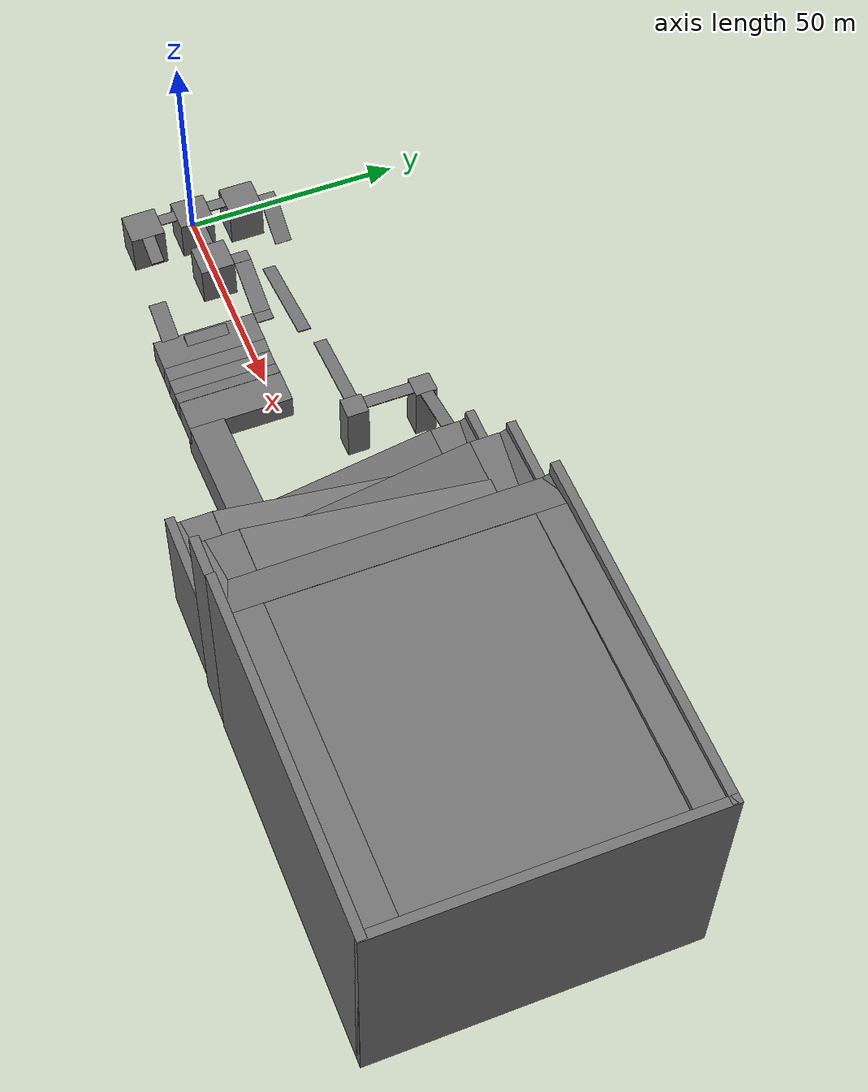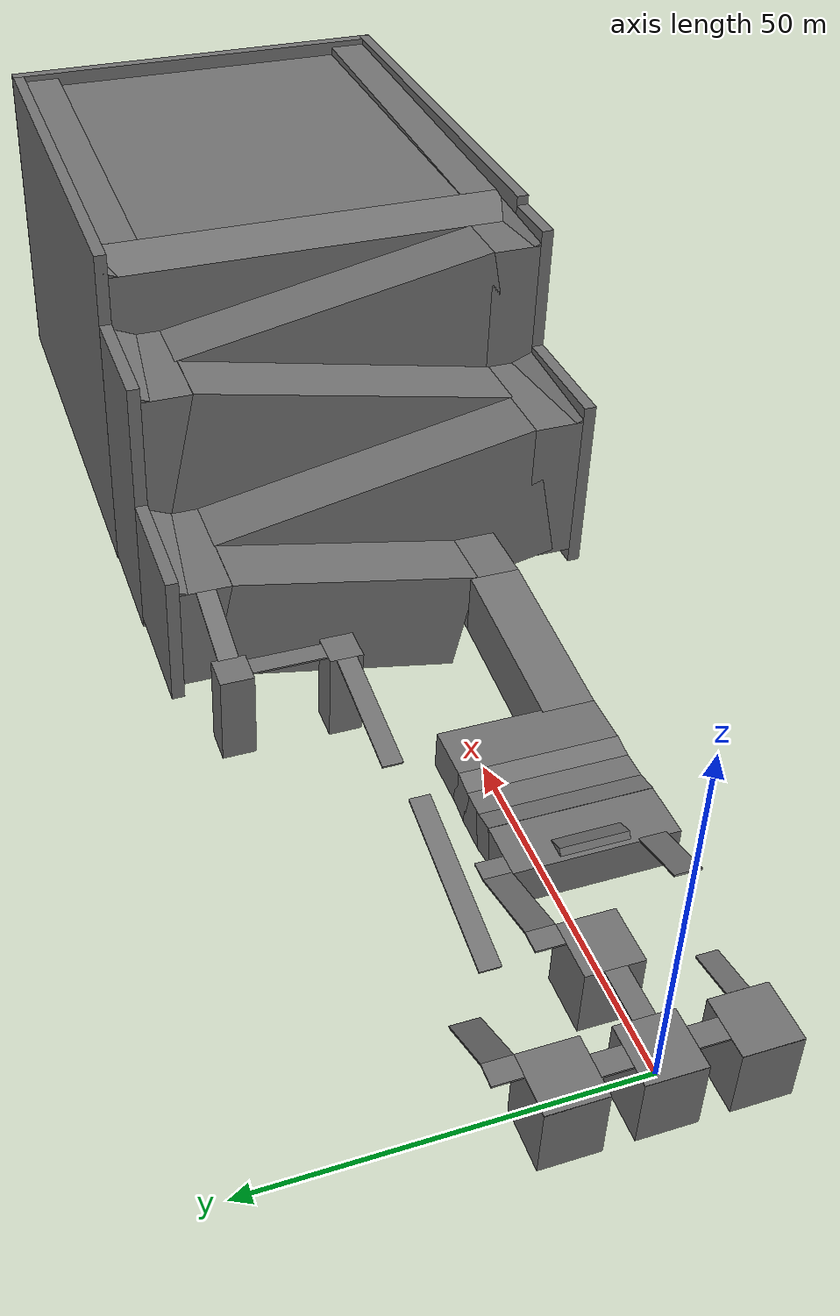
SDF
<sdf version="1.10">
 <world name="waterworld">
  <model name="central_tower">
   <static>true</static>
   <link name="link">
    <collision name="col"><geometry><box><size>8 8 10</size></box></geometry></collision>
    <visual name="vis">
     <geometry><box><size>8 8 10</size></box></geometry>
     <material>
      <ambient>0.35 0.35 0.35 1</ambient>
      <diffuse>0.45 0.45 0.45 1</diffuse>
      <pbr>
       <metal>
        <albedo_map>model://textures/stone_textures/stone_wall_seamless_1x1.jpg</albedo_map>
        <roughness>0.9</roughness>
        <metalness>0.0</metalness>
       </metal>
      </pbr>
     </material>
    </visual>
   </link>
  </model>
  <model name="central_arena_floor_model">
   <static>true</static>
   <pose>0 0 5 0 0 0</pose>
   <link name="central_arena_floor_link">
    <collision name="col">
     <geometry><box><size>8 8 0.1</size></box></geometry>
     <surface>
      <friction><ode><mu>0.9</mu><mu2>0.9</mu2><fdir1>1 0 0</fdir1></ode></friction>
      <bounce><restitution_coefficient>0.03</restitution_coefficient><threshold>1e3</threshold></bounce>
      <contact><ode><kp>1e6</kp><kd>1e3</kd><max_vel>1.0</max_vel><min_depth>0.001</min_depth></ode></contact>
     </surface>
    </collision>
    <visual name="vis">
     <geometry><box><size>8 8 0.1</size></box></geometry>
     <material>
      <ambient>0.35 0.35 0.35 1</ambient>
      <diffuse>0.45 0.45 0.45 1</diffuse>
      <pbr>
       <metal>
        <albedo_map>model://textures/grass_textures/green_grass_seamless.jpg</albedo_map>
        <roughness>0.9</roughness>
        <metalness>0.0</metalness>
       </metal>
      </pbr>
     </material>
    </visual>
   </link>
  </model>
  <model name="west_tower">
   <static>true</static>
   <link name="link">
    <pose>0 12 0 0 0 0</pose>
    <collision name="col"><geometry><box><size>8 8 10</size></box></geometry></collision>
    <visual name="vis">
     <geometry><box><size>8 8 10</size></box></geometry>
     <material>
      <ambient>0.35 0.35 0.35 1</ambient>
      <diffuse>0.45 0.45 0.45 1</diffuse>
      <pbr>
       <metal>
        <albedo_map>model://textures/stone_textures/stone_wall_seamless_1x1.jpg</albedo_map>
        <roughness>0.9</roughness>
        <metalness>0.0</metalness>
       </metal>
      </pbr>
     </material>
    </visual>
   </link>
  </model>
  <model name="west_arena_floor_model">
   <static>true</static>
   <pose>0 12 5 0 0 0</pose>
   <link name="west_arena_floor_link">
    <collision name="col">
     <geometry><box><size>8 8 0.1</size></box></geometry>
     <surface>
      <friction><ode><mu>0.9</mu><mu2>0.9</mu2><fdir1>1 0 0</fdir1></ode></friction>
      <bounce><restitution_coefficient>0.03</restitution_coefficient><threshold>1e3</threshold></bounce>
      <contact><ode><kp>1e6</kp><kd>1e3</kd><max_vel>1.0</max_vel><min_depth>0.001</min_depth></ode></contact>
     </surface>
    </collision>
    <visual name="vis">
     <geometry><box><size>8 8 0.1</size></box></geometry>
     <material>
      <ambient>0.35 0.35 0.35 1</ambient>
      <diffuse>0.45 0.45 0.45 1</diffuse>
      <pbr>
       <metal>
        <albedo_map>model://textures/grass_textures/green_grass_seamless.jpg</albedo_map>
        <roughness>0.9</roughness>
        <metalness>0.0</metalness>
       </metal>
      </pbr>
     </material>
    </visual>
   </link>
  </model>
  <model name="east_tower">
   <static>true</static>
   <link name="link">
    <pose>0 -12 0 0 0 0</pose>
    <collision name="col"><geometry><box><size>8 8 10</size></box></geometry></collision>
    <visual name="vis">
     <geometry><box><size>8 8 10</size></box></geometry>
     <material>
      <ambient>0.35 0.35 0.35 1</ambient>
      <diffuse>0.45 0.45 0.45 1</diffuse>
      <pbr>
       <metal>
        <albedo_map>model://textures/stone_textures/stone_wall_seamless_1x1.jpg</albedo_map>
        <roughness>0.9</roughness>
        <metalness>0.0</metalness>
       </metal>
      </pbr>
     </material>
    </visual>
   </link>
  </model>
  <model name="east_arena_floor_model">
   <static>true</static>
   <pose>0 -12 5 0 0 0</pose>
   <link name="east_arena_floor_link">
    <collision name="col">
     <geometry><box><size>8 8 0.1</size></box></geometry>
     <surface>
      <friction><ode><mu>0.9</mu><mu2>0.9</mu2><fdir1>1 0 0</fdir1></ode></friction>
      <bounce><restitution_coefficient>0.03</restitution_coefficient><threshold>1e3</threshold></bounce>
      <contact><ode><kp>1e6</kp><kd>1e3</kd><max_vel>1.0</max_vel><min_depth>0.001</min_depth></ode></contact>
     </surface>
    </collision>
    <visual name="vis">
     <geometry><box><size>8 8 0.1</size></box></geometry>
     <material>
      <ambient>0.35 0.35 0.35 1</ambient>
      <diffuse>0.45 0.45 0.45 1</diffuse>
      <pbr>
       <metal>
        <albedo_map>model://textures/grass_textures/green_grass_seamless.jpg</albedo_map>
        <roughness>0.9</roughness>
        <metalness>0.0</metalness>
       </metal>
      </pbr>
     </material>
    </visual>
   </link>
  </model>
  <model name="north_tower">
   <static>true</static>
   <link name="link">
    <pose>15 0 0 0 0 0</pose>
    <collision name="col"><geometry><box><size>8 8 10</size></box></geometry></collision>
    <visual name="vis">
     <geometry><box><size>8 8 10</size></box></geometry>
     <material>
      <ambient>0.35 0.35 0.35 1</ambient>
      <diffuse>0.45 0.45 0.45 1</diffuse>
      <pbr>
       <metal>
        <albedo_map>model://textures/stone_textures/stone_wall_seamless_1x1.jpg</albedo_map>
        <roughness>0.9</roughness>
        <metalness>0.0</metalness>
       </metal>
      </pbr>
     </material>
    </visual>
   </link>
  </model>
  <model name="tidal_island_segment_1">
   <static>true</static>
   <link name="link">
    <pose>35 -8 -2.2 0 0 0</pose>
    <collision name="col"><geometry><box><size>8 24 6</size></box></geometry></collision>
    <visual name="vis">
     <geometry><box><size>8 24 6</size></box></geometry>
     <material>
      <ambient>0.35 0.35 0.35 1</ambient>
      <diffuse>0.45 0.45 0.45 1</diffuse>
      <pbr>
       <metal>
        <albedo_map>model://textures/stone_textures/stone_wall_seamless_1x1.jpg</albedo_map>
        <roughness>0.9</roughness>
        <metalness>0.0</metalness>
       </metal>
      </pbr>
     </material>
    </visual>
   </link>
  </model>
  <model name="tidal_island_segment_1_ramp">
   <static>true</static>
   <link name="link">
    <pose>33 -8 -0.1 0 0.4 0</pose>
    <collision name="col"><geometry><box><size>3 10 3</size></box></geometry></collision>
    <visual name="vis">
     <geometry><box><size>3 10 3</size></box></geometry>
     <material>
      <ambient>0.35 0.35 0.35 1</ambient>
      <diffuse>0.45 0.45 0.45 1</diffuse>
      <pbr>
       <metal>
        <albedo_map>model://textures/stone_textures/stone_wall_seamless_1x1.jpg</albedo_map>
        <roughness>0.9</roughness>
        <metalness>0.0</metalness>
       </metal>
      </pbr>
     </material>
    </visual>
   </link>
  </model>
  <model name="tidal_island_segment_2">
   <static>true</static>
   <link name="link">
    <pose>40.3641 -8 -2.4876 0 0.2 0</pose>
    <collision name="col"><geometry><box><size>4 24 6</size></box></geometry></collision>
    <visual name="vis">
     <geometry><box><size>4 24 6</size></box></geometry>
     <material>
      <ambient>0.35 0.35 0.35 1</ambient>
      <diffuse>0.45 0.45 0.45 1</diffuse>
      <pbr>
       <metal>
        <albedo_map>model://textures/stone_textures/stone_wall_seamless_4x1.jpg</albedo_map>
        <roughness>0.9</roughness>
        <metalness>0.0</metalness>
       </metal>
      </pbr>
     </material>
    </visual>
   </link>
  </model>
  <model name="tidal_island_segment_3">
   <static>true</static>
   <link name="link">
    <pose>44.2 -8 -2.8 0 0 0</pose>
    <collision name="col"><geometry><box><size>5 24 6</size></box></geometry></collision>
    <visual name="vis">
     <geometry><box><size>5 24 6</size></box></geometry>
     <material>
      <ambient>0.35 0.35 0.35 1</ambient>
      <diffuse>0.45 0.45 0.45 1</diffuse>
      <pbr>
       <metal>
        <albedo_map>model://textures/stone_textures/stone_wall_seamless_4x1.jpg</albedo_map>
        <roughness>0.9</roughness>
        <metalness>0.0</metalness>
       </metal>
      </pbr>
     </material>
    </visual>
   </link>
  </model>
  <model name="tidal_island_segment_4">
   <static>true</static>
   <link name="link">
    <pose>48 -8 -2.4876 0 -0.2 0</pose>
    <collision name="col"><geometry><box><size>4 24 6</size></box></geometry></collision>
    <visual name="vis">
     <geometry><box><size>4 24 6</size></box></geometry>
     <material>
      <ambient>0.35 0.35 0.35 1</ambient>
      <diffuse>0.45 0.45 0.45 1</diffuse>
      <pbr>
       <metal>
        <albedo_map>model://textures/stone_textures/stone_wall_seamless_4x1.jpg</albedo_map>
        <roughness>0.9</roughness>
        <metalness>0.0</metalness>
       </metal>
      </pbr>
     </material>
    </visual>
   </link>
  </model>
  <model name="tidal_island_segment_5">
   <static>true</static>
   <link name="link">
    <pose>53.3641 -8 -2.2 0 0 0</pose>
    <collision name="col"><geometry><box><size>8 24 6</size></box></geometry></collision>
    <visual name="vis">
     <geometry><box><size>8 24 6</size></box></geometry>
     <material>
      <ambient>0.35 0.35 0.35 1</ambient>
      <diffuse>0.45 0.45 0.45 1</diffuse>
      <pbr>
       <metal>
        <albedo_map>model://textures/stone_textures/stone_wall_seamless_1x1.jpg</albedo_map>
        <roughness>0.9</roughness>
        <metalness>0.0</metalness>
       </metal>
      </pbr>
     </material>
    </visual>
   </link>
  </model>
  <model name="north_bridge">
   <static>true</static>
   <link name="link">
    <pose>7.5 0 4.925 0 0 0</pose>
    <collision name="col"><geometry><box><size>7 3 0.25</size></box></geometry></collision>
    <visual name="vis">
     <geometry><box><size>7 3 0.25</size></box></geometry>
     <material>
      <ambient>0.35 0.35 0.35 1</ambient>
      <diffuse>0.45 0.45 0.45 1</diffuse>
      <pbr>
       <metal>
        <albedo_map>model://textures/wood_textures/wood_texture_seamless_1x2.jpg</albedo_map>
        <roughness>0.9</roughness>
        <metalness>0.0</metalness>
       </metal>
      </pbr>
     </material>
    </visual>
   </link>
  </model>
  <model name="east_bridge">
   <static>true</static>
   <link name="link">
    <pose>0 -6 4.925 0 0 0</pose>
    <collision name="col"><geometry><box><size>3 4 0.25</size></box></geometry></collision>
    <visual name="vis">
     <geometry><box><size>3 4 0.25</size></box></geometry>
     <material>
      <ambient>0.35 0.35 0.35 1</ambient>
      <diffuse>0.45 0.45 0.45 1</diffuse>
      <pbr>
       <metal>
        <albedo_map>model://textures/wood_textures/wood_texture_seamless_1x1.jpg</albedo_map>
        <roughness>0.9</roughness>
        <metalness>0.0</metalness>
       </metal>
      </pbr>
     </material>
    </visual>
   </link>
  </model>
  <model name="west_bridge">
   <static>true</static>
   <link name="link">
    <pose>0 6 4.925 0 0 0</pose>
    <collision name="col"><geometry><box><size>3 4 0.25</size></box></geometry></collision>
    <visual name="vis">
     <geometry><box><size>3 4 0.25</size></box></geometry>
     <material>
      <ambient>0.35 0.35 0.35 1</ambient>
      <diffuse>0.45 0.45 0.45 1</diffuse>
      <pbr>
       <metal>
        <albedo_map>model://textures/wood_textures/wood_texture_seamless_1x1.jpg</albedo_map>
        <roughness>0.9</roughness>
        <metalness>0.0</metalness>
       </metal>
      </pbr>
     </material>
    </visual>
   </link>
  </model>
  <model name="east_north_bridge">
   <static>true</static>
   <link name="link">
    <pose>7.39 -12 4.165 0 0.22 0</pose>
    <collision name="col"><geometry><box><size>7 3 0.25</size></box></geometry></collision>
    <visual name="vis">
     <geometry><box><size>7 3 0.25</size></box></geometry>
     <material>
      <ambient>0.35 0.35 0.35 1</ambient>
      <diffuse>0.45 0.45 0.45 1</diffuse>
      <pbr>
       <metal>
        <albedo_map>model://textures/wood_textures/wood_texture_seamless_1x2.jpg</albedo_map>
        <roughness>0.9</roughness>
        <metalness>0.0</metalness>
       </metal>
      </pbr>
     </material>
    </visual>
   </link>
  </model>
  <model name="west_north_bridge_platform">
   <static>true</static>
   <link name="link">
    <pose>2.5 18 4.925 0 0 0</pose>
    <collision name="col"><geometry><box><size>3 4 0.25</size></box></geometry></collision>
    <visual name="vis">
     <geometry><box><size>3 4 0.25</size></box></geometry>
     <material>
      <ambient>0.35 0.35 0.35 1</ambient>
      <diffuse>0.45 0.45 0.45 1</diffuse>
      <pbr>
       <metal>
        <albedo_map>model://textures/wood_textures/wood_texture_seamless_1x1.jpg</albedo_map>
        <roughness>0.9</roughness>
        <metalness>0.0</metalness>
       </metal>
      </pbr>
     </material>
    </visual>
   </link>
  </model>
  <model name="west_north_bridge">
   <static>true</static>
   <link name="link">
    <pose>8.328 18 2.543 0 0.5 0</pose>
    <collision name="col"><geometry><box><size>10 4 0.25</size></box></geometry></collision>
    <visual name="vis">
     <geometry><box><size>10 4 0.25</size></box></geometry>
     <material>
      <ambient>0.35 0.35 0.35 1</ambient>
      <diffuse>0.45 0.45 0.45 1</diffuse>
      <pbr>
       <metal>
        <albedo_map>model://textures/wood_textures/wood_texture_seamless_1x3.jpg</albedo_map>
        <roughness>0.9</roughness>
        <metalness>0.0</metalness>
       </metal>
      </pbr>
     </material>
    </visual>
   </link>
  </model>
  <model name="west_north_north_bridge">
   <static>true</static>
   <link name="link">
    <pose>31 12.2 2.5 0 -0.2 0</pose>
    <collision name="col"><geometry><box><size>25 3 0.25</size></box></geometry></collision>
    <visual name="vis">
     <geometry><box><size>25 3 0.25</size></box></geometry>
     <material>
      <ambient>0.35 0.35 0.35 1</ambient>
      <diffuse>0.45 0.45 0.45 1</diffuse>
      <pbr>
       <metal>
        <albedo_map>model://textures/wood_textures/wood_texture_seamless_1x10.jpg</albedo_map>
        <roughness>0.9</roughness>
        <metalness>0.0</metalness>
       </metal>
      </pbr>
     </material>
    </visual>
   </link>
  </model>
  <model name="north_north_bridge_platform_1">
   <static>true</static>
   <link name="link">
    <pose>17.5 6 4.925 0 0 0</pose>
    <collision name="col"><geometry><box><size>3 4 0.25</size></box></geometry></collision>
    <visual name="vis">
     <geometry><box><size>3 4 0.25</size></box></geometry>
     <material>
      <ambient>0.35 0.35 0.35 1</ambient>
      <diffuse>0.45 0.45 0.45 1</diffuse>
      <pbr>
       <metal>
        <albedo_map>model://textures/wood_textures/wood_texture_seamless_1x3.jpg</albedo_map>
        <roughness>0.9</roughness>
        <metalness>0.0</metalness>
       </metal>
      </pbr>
     </material>
    </visual>
   </link>
  </model>
  <model name="north_north_bridge">
   <static>true</static>
   <link name="link">
    <pose>25.1 6 2.82 0 0.33 0</pose>
    <collision name="col"><geometry><box><size>13 4 0.25</size></box></geometry></collision>
    <visual name="vis">
     <geometry><box><size>13 4 0.25</size></box></geometry>
     <material>
      <ambient>0.35 0.35 0.35 1</ambient>
      <diffuse>0.45 0.45 0.45 1</diffuse>
      <pbr>
       <metal>
        <albedo_map>model://textures/wood_textures/wood_texture_seamless_1x3.jpg</albedo_map>
        <roughness>0.9</roughness>
        <metalness>0.0</metalness>
       </metal>
      </pbr>
     </material>
    </visual>
   </link>
  </model>
  <model name="north_north_bridge_platform_2">
   <static>true</static>
   <link name="link">
    <pose>32.5 6 0.725 0 0 0</pose>
    <collision name="col"><geometry><box><size>3 4 0.25</size></box></geometry></collision>
    <visual name="vis">
     <geometry><box><size>3 4 0.25</size></box></geometry>
     <material>
      <ambient>0.35 0.35 0.35 1</ambient>
      <diffuse>0.45 0.45 0.45 1</diffuse>
      <pbr>
       <metal>
        <albedo_map>model://textures/wood_textures/wood_texture_seamless_1x1.jpg</albedo_map>
        <roughness>0.9</roughness>
        <metalness>0.0</metalness>
       </metal>
      </pbr>
     </material>
    </visual>
   </link>
  </model>
  <model name="east_north_north_bridge">
   <static>true</static>
   <link name="link">
    <pose>27.26 -16 1.986 0 0.3 0</pose>
    <collision name="col"><geometry><box><size>10 4 0.25</size></box></geometry></collision>
    <visual name="vis">
     <geometry><box><size>10 4 0.25</size></box></geometry>
     <material>
      <ambient>0.35 0.35 0.35 1</ambient>
      <diffuse>0.45 0.45 0.45 1</diffuse>
      <pbr>
       <metal>
        <albedo_map>model://textures/wood_textures/wood_texture_seamless_1x5.jpg</albedo_map>
        <roughness>0.9</roughness>
        <metalness>0.0</metalness>
       </metal>
      </pbr>
     </material>
    </visual>
   </link>
  </model>
  <model name="stone_bridge_1">
   <static>true</static>
   <link name="link">
    <pose>70 -15.999 -2.66 0 -0.12 0</pose>
    <collision name="col"><geometry><box><size>30 8 10</size></box></geometry></collision>
    <visual name="vis">
     <geometry><box><size>30 8 10</size></box></geometry>
     <material>
      <ambient>0.35 0.35 0.35 1</ambient>
      <diffuse>0.45 0.45 0.45 1</diffuse>
      <pbr>
       <metal>
        <albedo_map>model://textures/stone_textures/stone_wall_seamless_1x3.jpg</albedo_map>
        <roughness>0.9</roughness>
        <metalness>0.0</metalness>
       </metal>
      </pbr>
     </material>
    </visual>
   </link>
  </model>
  <model name="east_north_north_north_bridge_1">
   <static>true</static>
   <link name="link">
    <pose>57.978 14 7.6 0 -0.133 0</pose>
    <collision name="col"><geometry><box><size>19.25 3 0.25</size></box></geometry></collision>
    <visual name="vis">
     <geometry><box><size>19.25 3 0.25</size></box></geometry>
     <material>
      <ambient>0.35 0.35 0.35 1</ambient>
      <diffuse>0.45 0.45 0.45 1</diffuse>
      <pbr>
       <metal>
        <albedo_map>model://textures/wood_textures/wood_texture_seamless_1x5.jpg</albedo_map>
        <roughness>0.9</roughness>
        <metalness>0.0</metalness>
       </metal>
      </pbr>
     </material>
    </visual>
   </link>
  </model>
  <model name="east_north_north_north_bridge_platform_1">
   <static>true</static>
   <link name="link">
    <pose>70 14 2 0 0 0</pose>
    <collision name="col"><geometry><box><size>5 5 14</size></box></geometry></collision>
    <visual name="vis">
     <geometry><box><size>5 5 14</size></box></geometry>
     <material>
      <ambient>0.35 0.35 0.35 1</ambient>
      <diffuse>0.45 0.45 0.45 1</diffuse>
      <pbr>
       <metal>
        <albedo_map>model://textures/stone_textures/stone_wall_seamless_1x1.jpg</albedo_map>
        <roughness>0.9</roughness>
        <metalness>0.0</metalness>
       </metal>
      </pbr>
     </material>
    </visual>
   </link>
  </model>
  <model name="east_north_north_north_bridge_2">
   <static>true</static>
   <link name="link">
    <pose>70 22 8.875 0 0 0</pose>
    <collision name="col"><geometry><box><size>3 11 0.25</size></box></geometry></collision>
    <visual name="vis">
     <geometry><box><size>3 11 0.25</size></box></geometry>
     <material>
      <ambient>0.35 0.35 0.35 1</ambient>
      <diffuse>0.45 0.45 0.45 1</diffuse>
      <pbr>
       <metal>
        <albedo_map>model://textures/wood_textures/wood_texture_seamless_1x1.jpg</albedo_map>
        <roughness>0.9</roughness>
        <metalness>0.0</metalness>
       </metal>
      </pbr>
     </material>
    </visual>
   </link>
  </model>
  <model name="east_north_north_north_bridge_platform_2">
   <static>true</static>
   <link name="link">
    <pose>70 30 2 0 0 0</pose>
    <collision name="col"><geometry><box><size>5 5 14</size></box></geometry></collision>
    <visual name="vis">
     <geometry><box><size>5 5 14</size></box></geometry>
     <material>
      <ambient>0.35 0.35 0.35 1</ambient>
      <diffuse>0.45 0.45 0.45 1</diffuse>
      <pbr>
       <metal>
        <albedo_map>model://textures/stone_textures/stone_wall_seamless_1x1.jpg</albedo_map>
        <roughness>0.9</roughness>
        <metalness>0.0</metalness>
       </metal>
      </pbr>
     </material>
    </visual>
   </link>
  </model>
  <model name="east_north_north_north_bridge_3">
   <static>true</static>
   <link name="link">
    <pose>78.265 30 10.385 0 -0.25 0</pose>
    <collision name="col"><geometry><box><size>12.5 3 0.25</size></box></geometry></collision>
    <visual name="vis">
     <geometry><box><size>12.5 3 0.25</size></box></geometry>
     <material>
      <ambient>0.35 0.35 0.35 1</ambient>
      <diffuse>0.45 0.45 0.45 1</diffuse>
      <pbr>
       <metal>
        <albedo_map>model://textures/wood_textures/wood_texture_seamless_1x5.jpg</albedo_map>
        <roughness>0.9</roughness>
        <metalness>0.0</metalness>
       </metal>
      </pbr>
     </material>
    </visual>
   </link>
  </model>
  <model name="ramp_tower_left_landing_1">
   <static>true</static>
   <link name="link">
    <pose>94.29 30 3.5 0 0 0</pose>
    <collision name="col"><geometry><box><size>20 8 17</size></box></geometry></collision>
    <visual name="vis">
     <geometry><box><size>20 8 17</size></box></geometry>
     <material>
      <ambient>0.35 0.35 0.35 1</ambient>
      <diffuse>0.45 0.45 0.45 1</diffuse>
      <pbr>
       <metal>
        <albedo_map>model://textures/stone_textures/stone_wall_seamless_1x1.jpg</albedo_map>
        <roughness>0.9</roughness>
        <metalness>0.0</metalness>
       </metal>
      </pbr>
     </material>
    </visual>
   </link>
  </model>
  <model name="ramp_tower_left_landing_1_wall">
   <static>true</static>
   <link name="link">
    <pose>94.29 35 3.5 0 0 0</pose>
    <collision name="col"><geometry><box><size>20 2 22</size></box></geometry></collision>
    <visual name="vis">
     <geometry><box><size>20 2 22</size></box></geometry>
     <material>
      <ambient>0.35 0.35 0.35 1</ambient>
      <diffuse>0.45 0.45 0.45 1</diffuse>
      <pbr>
       <metal>
        <albedo_map>model://textures/stone_textures/stone_wall_seamless_1x1.jpg</albedo_map>
        <roughness>0.9</roughness>
        <metalness>0.0</metalness>
       </metal>
      </pbr>
     </material>
    </visual>
   </link>
  </model>
  <model name="ramp_tower_left_landing_1_ramp">
   <static>true</static>
   <link name="link">
    <pose>94.6 33 11 0.40 -0.05 0</pose>
    <collision name="col"><geometry><box><size>20.4 5 3</size></box></geometry></collision>
    <visual name="vis">
     <geometry><box><size>20.4 5 3</size></box></geometry>
     <material>
      <ambient>0.35 0.35 0.35 1</ambient>
      <diffuse>0.45 0.45 0.45 1</diffuse>
      <pbr>
       <metal>
        <albedo_map>model://textures/stone_textures/stone_wall_seamless_1x1.jpg</albedo_map>
        <roughness>0.9</roughness>
        <metalness>0.0</metalness>
       </metal>
      </pbr>
     </material>
    </visual>
   </link>
  </model>
  <model name="ramp_tower_right_landing_1">
   <static>true</static>
   <link name="link">
    <pose>89.29 -15.999 -0.95 0 0 0</pose>
    <collision name="col"><geometry><box><size>10 8 10</size></box></geometry></collision>
    <visual name="vis">
     <geometry><box><size>10 8 10</size></box></geometry>
     <material>
      <ambient>0.35 0.35 0.35 1</ambient>
      <diffuse>0.45 0.45 0.45 1</diffuse>
      <pbr>
       <metal>
        <albedo_map>model://textures/stone_textures/stone_wall_seamless_1x1.jpg</albedo_map>
        <roughness>0.9</roughness>
        <metalness>0.0</metalness>
       </metal>
      </pbr>
     </material>
    </visual>
   </link>
  </model>
  <model name="ramp_tower_ramp_1">
   <static>true</static>
   <link name="link">
    <pose>89.29 8.087 -0.253 0.2 0 0</pose>
    <collision name="col"><geometry><box><size>10 40 17</size></box></geometry></collision>
    <visual name="vis">
     <geometry><box><size>10 40 17</size></box></geometry>
     <material>
      <ambient>0.35 0.35 0.35 1</ambient>
      <diffuse>0.45 0.45 0.45 1</diffuse>
      <pbr>
       <metal>
        <albedo_map>model://textures/stone_textures/stone_wall_seamless_4x1.jpg</albedo_map>
        <roughness>0.9</roughness>
        <metalness>0.0</metalness>
       </metal>
      </pbr>
     </material>
    </visual>
   </link>
  </model>
  <model name="ramp_tower_ramp_2">
   <static>true</static>
   <link name="link">
    <pose>99.29 0 4.55 -0.2 0 0</pose>
    <collision name="col"><geometry><box><size>10 58.15 25</size></box></geometry></collision>
    <visual name="vis">
     <geometry><box><size>10 58.15 25</size></box></geometry>
     <material>
      <ambient>0.35 0.35 0.35 1</ambient>
      <diffuse>0.45 0.45 0.45 1</diffuse>
      <pbr>
       <metal>
        <albedo_map>model://textures/stone_textures/stone_wall_seamless_4x1.jpg</albedo_map>
        <roughness>0.9</roughness>
        <metalness>0.0</metalness>
       </metal>
      </pbr>
     </material>
    </visual>
   </link>
  </model>
  <model name="ramp_tower_left_landing_2">
   <static>true</static>
   <link name="link">
    <pose>104.29 -30 10 0 0 0</pose>
    <collision name="col"><geometry><box><size>20 8 25</size></box></geometry></collision>
    <visual name="vis">
     <geometry><box><size>20 8 25</size></box></geometry>
     <material>
      <ambient>0.35 0.35 0.35 1</ambient>
      <diffuse>0.45 0.45 0.45 1</diffuse>
      <pbr>
       <metal>
        <albedo_map>model://textures/stone_textures/stone_wall_seamless_1x1.jpg</albedo_map>
        <roughness>0.9</roughness>
        <metalness>0.0</metalness>
       </metal>
      </pbr>
     </material>
    </visual>
   </link>
  </model>
  <model name="ramp_tower_left_landing_2_wall">
   <static>true</static>
   <link name="link">
    <pose>104.29 -35 10 0 0 0</pose>
    <collision name="col"><geometry><box><size>20 2 30</size></box></geometry></collision>
    <visual name="vis">
     <geometry><box><size>20 2 30</size></box></geometry>
     <material>
      <ambient>0.35 0.35 0.35 1</ambient>
      <diffuse>0.45 0.45 0.45 1</diffuse>
      <pbr>
       <metal>
        <albedo_map>model://textures/stone_textures/stone_wall_seamless_1x1.jpg</albedo_map>
        <roughness>0.9</roughness>
        <metalness>0.0</metalness>
       </metal>
      </pbr>
     </material>
    </visual>
   </link>
  </model>
  <model name="ramp_tower_left_landing_2_ramp">
   <static>true</static>
   <link name="link">
    <pose>104.6 -32.5 21.2 -0.4 -0.05 0</pose>
    <collision name="col"><geometry><box><size>20.4 5 3</size></box></geometry></collision>
    <visual name="vis">
     <geometry><box><size>20.4 5 3</size></box></geometry>
     <material>
      <ambient>0.35 0.35 0.35 1</ambient>
      <diffuse>0.45 0.45 0.45 1</diffuse>
      <pbr>
       <metal>
        <albedo_map>model://textures/stone_textures/stone_wall_seamless_1x1.jpg</albedo_map>
        <roughness>0.9</roughness>
        <metalness>0.0</metalness>
       </metal>
      </pbr>
     </material>
    </visual>
   </link>
  </model>
  <model name="ramp_tower_ramp_3">
   <static>true</static>
   <link name="link">
    <pose>109.29 0 15.1 0.2 0 0</pose>
    <collision name="col"><geometry><box><size>10 58.15 25</size></box></geometry></collision>
    <visual name="vis">
     <geometry><box><size>10 58.15 25</size></box></geometry>
     <material>
      <ambient>0.35 0.35 0.35 1</ambient>
      <diffuse>0.45 0.45 0.45 1</diffuse>
      <pbr>
       <metal>
        <albedo_map>model://textures/stone_textures/stone_wall_seamless_4x1.jpg</albedo_map>
        <roughness>0.9</roughness>
        <metalness>0.0</metalness>
       </metal>
      </pbr>
     </material>
    </visual>
   </link>
  </model>
  <model name="ramp_tower_left_landing_3">
   <static>true</static>
   <link name="link">
    <pose>114.29 30 13.05 0 0 0</pose>
    <collision name="col"><geometry><box><size>20 8 40</size></box></geometry></collision>
    <visual name="vis">
     <geometry><box><size>20 8 40</size></box></geometry>
     <material>
      <ambient>0.35 0.35 0.35 1</ambient>
      <diffuse>0.45 0.45 0.45 1</diffuse>
      <pbr>
       <metal>
        <albedo_map>model://textures/stone_textures/stone_wall_seamless_1x1.jpg</albedo_map>
        <roughness>0.9</roughness>
        <metalness>0.0</metalness>
       </metal>
      </pbr>
     </material>
    </visual>
   </link>
  </model>
  <model name="ramp_tower_left_landing_3_wall">
   <static>true</static>
   <link name="link">
    <pose>114.29 35 13.05 0 0 0</pose>
    <collision name="col"><geometry><box><size>20 2 45</size></box></geometry></collision>
    <visual name="vis">
     <geometry><box><size>20 2 45</size></box></geometry>
     <material>
      <ambient>0.35 0.35 0.35 1</ambient>
      <diffuse>0.45 0.45 0.45 1</diffuse>
      <pbr>
       <metal>
        <albedo_map>model://textures/stone_textures/stone_wall_seamless_1x1.jpg</albedo_map>
        <roughness>0.9</roughness>
        <metalness>0.0</metalness>
       </metal>
      </pbr>
     </material>
    </visual>
   </link>
  </model>
  <model name="ramp_tower_left_landing_3_ramp">
   <static>true</static>
   <link name="link">
    <pose>114.6 33 32.1 0.40 -0.05 0</pose>
    <collision name="col"><geometry><box><size>20.4 5 3</size></box></geometry></collision>
    <visual name="vis">
     <geometry><box><size>20.4 5 3</size></box></geometry>
     <material>
      <ambient>0.35 0.35 0.35 1</ambient>
      <diffuse>0.45 0.45 0.45 1</diffuse>
      <pbr>
       <metal>
        <albedo_map>model://textures/stone_textures/stone_wall_seamless_1x1.jpg</albedo_map>
        <roughness>0.9</roughness>
        <metalness>0.0</metalness>
       </metal>
      </pbr>
     </material>
    </visual>
   </link>
  </model>
  <model name="ramp_tower_ramp_4">
   <static>true</static>
   <link name="link">
    <pose>119.29 0 25.65 -0.2 0 0</pose>
    <collision name="col"><geometry><box><size>10 58.15 25</size></box></geometry></collision>
    <visual name="vis">
     <geometry><box><size>10 58.15 25</size></box></geometry>
     <material>
      <ambient>0.35 0.35 0.35 1</ambient>
      <diffuse>0.45 0.45 0.45 1</diffuse>
      <pbr>
       <metal>
        <albedo_map>model://textures/stone_textures/stone_wall_seamless_4x1.jpg</albedo_map>
        <roughness>0.9</roughness>
        <metalness>0.0</metalness>
       </metal>
      </pbr>
     </material>
    </visual>
   </link>
  </model>
  <model name="ramp_tower_top_landing_4">
   <static>true</static>
   <link name="link">
    <pose>124.29 -30 18.6 0 0 0</pose>
    <collision name="col"><geometry><box><size>20 8 50</size></box></geometry></collision>
    <visual name="vis">
     <geometry><box><size>20 8 50</size></box></geometry>
     <material>
      <ambient>0.35 0.35 0.35 1</ambient>
      <diffuse>0.45 0.45 0.45 1</diffuse>
      <pbr>
       <metal>
        <albedo_map>model://textures/stone_textures/stone_wall_seamless_1x1.jpg</albedo_map>
        <roughness>0.9</roughness>
        <metalness>0.0</metalness>
       </metal>
      </pbr>
     </material>
    </visual>
   </link>
  </model>
  <model name="ramp_tower_top_landing_4_wall">
   <static>true</static>
   <link name="link">
    <pose>124.29 -35 18.6 0 0 0</pose>
    <collision name="col"><geometry><box><size>20 2 55</size></box></geometry></collision>
    <visual name="vis">
     <geometry><box><size>20 2 55</size></box></geometry>
     <material>
      <ambient>0.35 0.35 0.35 1</ambient>
      <diffuse>0.45 0.45 0.45 1</diffuse>
      <pbr>
       <metal>
        <albedo_map>model://textures/stone_textures/stone_wall_seamless_1x1.jpg</albedo_map>
        <roughness>0.9</roughness>
        <metalness>0.0</metalness>
       </metal>
      </pbr>
     </material>
    </visual>
   </link>
  </model>
  <model name="ramp_tower_left_landing_4_ramp">
   <static>true</static>
   <link name="link">
    <pose>124.6 -32.5 42.3 -0.4 -0.05 0</pose>
    <collision name="col"><geometry><box><size>20.4 5 3</size></box></geometry></collision>
    <visual name="vis">
     <geometry><box><size>20.4 5 3</size></box></geometry>
     <material>
      <ambient>0.35 0.35 0.35 1</ambient>
      <diffuse>0.45 0.45 0.45 1</diffuse>
      <pbr>
       <metal>
        <albedo_map>model://textures/stone_textures/stone_wall_seamless_1x1.jpg</albedo_map>
        <roughness>0.9</roughness>
        <metalness>0.0</metalness>
       </metal>
      </pbr>
     </material>
    </visual>
   </link>
  </model>
  <model name="ramp_tower_top_1">
   <static>true</static>
   <link name="link">
    <pose>129.29 0 18.6 0 0 0</pose>
    <collision name="col"><geometry><box><size>10 68 50</size></box></geometry></collision>
    <visual name="vis">
     <geometry><box><size>10 68 50</size></box></geometry>
     <material>
      <ambient>0.35 0.35 0.35 1</ambient>
      <diffuse>0.45 0.45 0.45 1</diffuse>
      <pbr>
       <metal>
        <albedo_map>model://textures/stone_textures/stone_wall_seamless_1x1.jpg</albedo_map>
        <roughness>0.9</roughness>
        <metalness>0.0</metalness>
       </metal>
      </pbr>
     </material>
    </visual>
   </link>
  </model>
  <model name="ramp_tower_top_ramp_1">
   <static>true</static>
   <link name="link">
    <pose>129.27 0 40.299 0 -0.2 0</pose>
    <collision name="col"><geometry><box><size>8.45 68 8.45</size></box></geometry></collision>
    <visual name="vis">
     <geometry><box><size>8.45 68 8.45</size></box></geometry>
     <material>
      <ambient>0.35 0.35 0.35 1</ambient>
      <diffuse>0.45 0.45 0.45 1</diffuse>
      <pbr>
       <metal>
        <albedo_map>model://textures/stone_textures/stone_wall_seamless_4x1.jpg</albedo_map>
        <roughness>0.9</roughness>
        <metalness>0.0</metalness>
       </metal>
      </pbr>
     </material>
    </visual>
   </link>
  </model>
  <model name="ramp_tower_top_ramp_2">
   <static>true</static>
   <link name="link">
    <pose>134.6 33 42.7 0.40 -0.05 0</pose>
    <collision name="col"><geometry><box><size>20.4 5 3</size></box></geometry></collision>
    <visual name="vis">
     <geometry><box><size>20.4 5 3</size></box></geometry>
     <material>
      <ambient>0.35 0.35 0.35 1</ambient>
      <diffuse>0.45 0.45 0.45 1</diffuse>
      <pbr>
       <metal>
        <albedo_map>model://textures/stone_textures/stone_wall_seamless_1x1.jpg</albedo_map>
        <roughness>0.9</roughness>
        <metalness>0.0</metalness>
       </metal>
      </pbr>
     </material>
    </visual>
   </link>
  </model>
  <model name="ramp_tower_top_2">
   <static>true</static>
   <link name="link">
    <pose>167.55 0 18.7 0 0 0</pose>
    <collision name="col"><geometry><box><size>70 68 53</size></box></geometry></collision>
    <visual name="vis">
     <geometry><box><size>70 68 53</size></box></geometry>
     <material>
      <ambient>0.35 0.35 0.35 1</ambient>
      <diffuse>0.45 0.45 0.45 1</diffuse>
      <pbr>
       <metal>
        <albedo_map>model://textures/stone_textures/stone_wall_seamless_1x1.jpg</albedo_map>
        <roughness>0.9</roughness>
        <metalness>0.0</metalness>
       </metal>
      </pbr>
     </material>
    </visual>
   </link>
  </model>
  <model name="tower_top_ramp_left_1">
   <static>true</static>
   <link name="link">
    <pose>166.85 31 43.97 0 -0.02 0</pose>
    <collision name="col"><geometry><box><size>68.5 7 4</size></box></geometry></collision>
    <visual name="vis">
     <geometry><box><size>68.5 7 4</size></box></geometry>
     <material>
      <ambient>0.35 0.35 0.35 1</ambient>
      <diffuse>0.45 0.45 0.45 1</diffuse>
      <pbr>
       <metal>
        <albedo_map>model://textures/stone_textures/stone_wall_seamless_1x3.jpg</albedo_map>
        <roughness>0.9</roughness>
        <metalness>0.0</metalness>
       </metal>
      </pbr>
     </material>
    </visual>
   </link>
  </model>
  <model name="tower_top_ramp_right_1">
   <static>true</static>
   <link name="link">
    <pose>166.85 -31 43.97 0 -0.02 0</pose>
    <collision name="col"><geometry><box><size>68.5 7 4</size></box></geometry></collision>
    <visual name="vis">
     <geometry><box><size>68.5 7 4</size></box></geometry>
     <material>
      <ambient>0.35 0.35 0.35 1</ambient>
      <diffuse>0.45 0.45 0.45 1</diffuse>
      <pbr>
       <metal>
        <albedo_map>model://textures/stone_textures/stone_wall_seamless_1x3.jpg</albedo_map>
        <roughness>0.9</roughness>
        <metalness>0.0</metalness>
       </metal>
      </pbr>
     </material>
    </visual>
   </link>
  </model>
  <model name="tower_wall_left_1">
   <static>true</static>
   <link name="link">
    <pose>163.55 35 18.7 0 0 0</pose>
    <collision name="col"><geometry><box><size>78.5 2 58</size></box></geometry></collision>
    <visual name="vis">
     <geometry><box><size>78.5 2 58</size></box></geometry>
     <material>
      <ambient>0.35 0.35 0.35 1</ambient>
      <diffuse>0.45 0.45 0.45 1</diffuse>
      <pbr>
       <metal>
        <albedo_map>model://textures/stone_textures/stone_wall_seamless_1x1.jpg</albedo_map>
        <roughness>0.9</roughness>
        <metalness>0.0</metalness>
       </metal>
      </pbr>
     </material>
    </visual>
   </link>
  </model>
  <model name="tower_wall_right_1">
   <static>true</static>
   <link name="link">
    <pose>163.55 -35 18.7 0 0 0</pose>
    <collision name="col"><geometry><box><size>78.5 2 58</size></box></geometry></collision>
    <visual name="vis">
     <geometry><box><size>78.5 2 58</size></box></geometry>
     <material>
      <ambient>0.35 0.35 0.35 1</ambient>
      <diffuse>0.45 0.45 0.45 1</diffuse>
      <pbr>
       <metal>
        <albedo_map>model://textures/stone_textures/stone_wall_seamless_1x1.jpg</albedo_map>
        <roughness>0.9</roughness>
        <metalness>0.0</metalness>
       </metal>
      </pbr>
     </material>
    </visual>
   </link>
  </model>
  <model name="tower_wall_back">
   <static>true</static>
   <link name="link">
    <pose>202 0 18.7 0 0 0</pose>
    <collision name="col"><geometry><box><size>2 72 58</size></box></geometry></collision>
    <visual name="vis">
     <geometry><box><size>2 72 58</size></box></geometry>
     <material>
      <ambient>0.35 0.35 0.35 1</ambient>
      <diffuse>0.45 0.45 0.45 1</diffuse>
      <pbr>
       <metal>
        <albedo_map>model://textures/stone_textures/stone_wall_seamless_1x1.jpg</albedo_map>
        <roughness>0.9</roughness>
        <metalness>0.0</metalness>
       </metal>
      </pbr>
     </material>
    </visual>
   </link>
  </model>
 </world>
</sdf>
